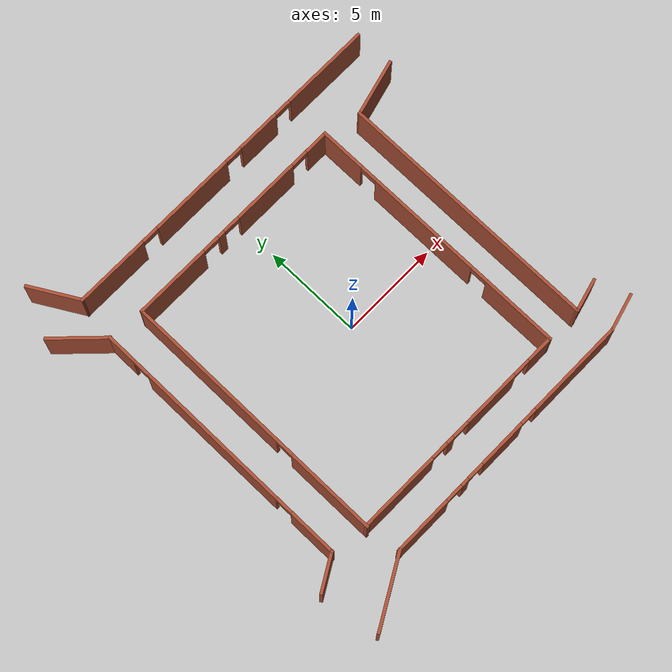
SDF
<?xml version='1.0'?>
<sdf version='1.6'>
  <model name='mcbryde'>
    <pose frame=''>-0.213241 0.373454 0 0 -0 0</pose>
    <link name='Wall_0'>
      <collision name='Wall_0_Collision'>
        <geometry>
          <box>
            <size>2.75 0.15 2.5</size>
          </box>
        </geometry>
        <pose frame=''>0 0 1.25 0 -0 0</pose>
      </collision>
      <visual name='Wall_0_Visual'>
        <pose frame=''>0 0 1.25 0 -0 0</pose>
        <geometry>
          <box>
            <size>2.75 0.15 2.5</size>
          </box>
        </geometry>
        <material>
          <script>
            <uri>file://media/materials/scripts/gazebo.material</uri>
            <name>Gazebo/Bricks</name>
          </script>
          <ambient>1 1 1 1</ambient>
        </material>
      </visual>
      <pose frame=''>-8.27781 9.77765 0 0 0 -1.0472</pose>
    </link>
    <link name='Wall_1'>
      <pose frame=''>1.17219 8.65181 0 0 -0 0</pose>
      <visual name='Wall_1_Visual_0'>
        <pose frame=''>-6.96373 0 1.25 0 -0 0</pose>
        <geometry>
          <box>
            <size>3.82254 0.15 2.5</size>
          </box>
        </geometry>
        <material>
          <script>
            <uri>file://media/materials/scripts/gazebo.material</uri>
            <name>Gazebo/Bricks</name>
          </script>
          <ambient>1 1 1 1</ambient>
        </material>
      </visual>
      <collision name='Wall_1_Collision_0'>
        <geometry>
          <box>
            <size>3.82254 0.15 2.5</size>
          </box>
        </geometry>
        <pose frame=''>-6.96373 0 1.25 0 -0 0</pose>
      </collision>
      <visual name='Wall_1_Visual_1'>
        <pose frame=''>-1.96406 0 1.25 0 -0 0</pose>
        <geometry>
          <box>
            <size>4.37681 0.15 2.5</size>
          </box>
        </geometry>
        <material>
          <script>
            <uri>file://media/materials/scripts/gazebo.material</uri>
            <name>Gazebo/Bricks</name>
          </script>
          <ambient>1 1 1 1</ambient>
        </material>
      </visual>
      <collision name='Wall_1_Collision_1'>
        <geometry>
          <box>
            <size>4.37681 0.15 2.5</size>
          </box>
        </geometry>
        <pose frame=''>-1.96406 0 1.25 0 -0 0</pose>
      </collision>
      <visual name='Wall_1_Visual_2'>
        <pose frame=''>2.25739 0 1.25 0 -0 0</pose>
        <geometry>
          <box>
            <size>2.26609 0.15 2.5</size>
          </box>
        </geometry>
        <material>
          <script>
            <uri>file://media/materials/scripts/gazebo.material</uri>
            <name>Gazebo/Bricks</name>
          </script>
          <ambient>1 1 1 1</ambient>
        </material>
      </visual>
      <collision name='Wall_1_Collision_2'>
        <geometry>
          <box>
            <size>2.26609 0.15 2.5</size>
          </box>
        </geometry>
        <pose frame=''>2.25739 0 1.25 0 -0 0</pose>
      </collision>
      <visual name='Wall_1_Visual_3'>
        <pose frame=''>6.58272 0 1.25 0 -0 0</pose>
        <geometry>
          <box>
            <size>4.58456 0.15 2.5</size>
          </box>
        </geometry>
        <material>
          <script>
            <uri>file://media/materials/scripts/gazebo.material</uri>
            <name>Gazebo/Bricks</name>
          </script>
          <ambient>1 1 1 1</ambient>
        </material>
      </visual>
      <collision name='Wall_1_Collision_3'>
        <geometry>
          <box>
            <size>4.58456 0.15 2.5</size>
          </box>
        </geometry>
        <pose frame=''>6.58272 0 1.25 0 -0 0</pose>
      </collision>
      <visual name='Wall_1_Visual_4'>
        <pose frame=''>-4.60246 0 2.25 0 -0 0</pose>
        <geometry>
          <box>
            <size>0.9 0.15 0.5</size>
          </box>
        </geometry>
        <material>
          <script>
            <uri>file://media/materials/scripts/gazebo.material</uri>
            <name>Gazebo/Bricks</name>
          </script>
          <ambient>1 1 1 1</ambient>
        </material>
      </visual>
      <collision name='Wall_1_Collision_4'>
        <geometry>
          <box>
            <size>0.9 0.15 0.5</size>
          </box>
        </geometry>
        <pose frame=''>-4.60246 0 2.25 0 -0 0</pose>
      </collision>
      <visual name='Wall_1_Visual_5'>
        <pose frame=''>0.674351 0 2.25 0 -0 0</pose>
        <geometry>
          <box>
            <size>0.9 0.15 0.5</size>
          </box>
        </geometry>
        <material>
          <script>
            <uri>file://media/materials/scripts/gazebo.material</uri>
            <name>Gazebo/Bricks</name>
          </script>
          <ambient>1 1 1 1</ambient>
        </material>
      </visual>
      <collision name='Wall_1_Collision_5'>
        <geometry>
          <box>
            <size>0.9 0.15 0.5</size>
          </box>
        </geometry>
        <pose frame=''>0.674351 0 2.25 0 -0 0</pose>
      </collision>
      <visual name='Wall_1_Visual_6'>
        <pose frame=''>3.84044 0 2.25 0 -0 0</pose>
        <geometry>
          <box>
            <size>0.9 0.15 0.5</size>
          </box>
        </geometry>
        <material>
          <script>
            <uri>file://media/materials/scripts/gazebo.material</uri>
            <name>Gazebo/Bricks</name>
          </script>
          <ambient>1 1 1 1</ambient>
        </material>
      </visual>
      <collision name='Wall_1_Collision_6'>
        <geometry>
          <box>
            <size>0.9 0.15 0.5</size>
          </box>
        </geometry>
        <pose frame=''>3.84044 0 2.25 0 -0 0</pose>
      </collision>
    </link>
    <link name='Wall_11'>
      <pose frame=''>5.46436 -0.506491 0 0 0 -1.5708</pose>
      <visual name='Wall_11_Visual_0'>
        <pose frame=''>-5.77958 0 1.25 0 -0 0</pose>
        <geometry>
          <box>
            <size>2.38734 0.15 2.5</size>
          </box>
        </geometry>
        <material>
          <script>
            <uri>file://media/materials/scripts/gazebo.material</uri>
            <name>Gazebo/Bricks</name>
          </script>
          <ambient>1 1 1 1</ambient>
        </material>
      </visual>
      <collision name='Wall_11_Collision_0'>
        <geometry>
          <box>
            <size>2.38734 0.15 2.5</size>
          </box>
        </geometry>
        <pose frame=''>-5.77958 0 1.25 0 -0 0</pose>
      </collision>
      <visual name='Wall_11_Visual_1'>
        <pose frame=''>-0.740396 0 1.25 0 -0 0</pose>
        <geometry>
          <box>
            <size>5.89103 0.15 2.5</size>
          </box>
        </geometry>
        <material>
          <script>
            <uri>file://media/materials/scripts/gazebo.material</uri>
            <name>Gazebo/Bricks</name>
          </script>
          <ambient>1 1 1 1</ambient>
        </material>
      </visual>
      <collision name='Wall_11_Collision_1'>
        <geometry>
          <box>
            <size>5.89103 0.15 2.5</size>
          </box>
        </geometry>
        <pose frame=''>-0.740396 0 1.25 0 -0 0</pose>
      </collision>
      <visual name='Wall_11_Visual_2'>
        <pose frame=''>5.03918 0 1.25 0 -0 0</pose>
        <geometry>
          <box>
            <size>3.86813 0.15 2.5</size>
          </box>
        </geometry>
        <material>
          <script>
            <uri>file://media/materials/scripts/gazebo.material</uri>
            <name>Gazebo/Bricks</name>
          </script>
          <ambient>1 1 1 1</ambient>
        </material>
      </visual>
      <collision name='Wall_11_Collision_2'>
        <geometry>
          <box>
            <size>3.86813 0.15 2.5</size>
          </box>
        </geometry>
        <pose frame=''>5.03918 0 1.25 0 -0 0</pose>
      </collision>
      <visual name='Wall_11_Visual_3'>
        <pose frame=''>-4.13591 0 2.25 0 -0 0</pose>
        <geometry>
          <box>
            <size>0.9 0.15 0.5</size>
          </box>
        </geometry>
        <material>
          <script>
            <uri>file://media/materials/scripts/gazebo.material</uri>
            <name>Gazebo/Bricks</name>
          </script>
          <ambient>1 1 1 1</ambient>
        </material>
      </visual>
      <collision name='Wall_11_Collision_3'>
        <geometry>
          <box>
            <size>0.9 0.15 0.5</size>
          </box>
        </geometry>
        <pose frame=''>-4.13591 0 2.25 0 -0 0</pose>
      </collision>
      <visual name='Wall_11_Visual_4'>
        <pose frame=''>2.65512 0 2.25 0 -0 0</pose>
        <geometry>
          <box>
            <size>0.9 0.15 0.5</size>
          </box>
        </geometry>
        <material>
          <script>
            <uri>file://media/materials/scripts/gazebo.material</uri>
            <name>Gazebo/Bricks</name>
          </script>
          <ambient>1 1 1 1</ambient>
        </material>
      </visual>
      <collision name='Wall_11_Collision_4'>
        <geometry>
          <box>
            <size>0.9 0.15 0.5</size>
          </box>
        </geometry>
        <pose frame=''>2.65512 0 2.25 0 -0 0</pose>
      </collision>
    </link>
    <link name='Wall_12'>
      <pose frame=''>-0.344396 -7.37799 0 0 -0 3.13699</pose>
      <visual name='Wall_12_Visual_0'>
        <pose frame=''>-5.15866 0 1.25 0 -0 0</pose>
        <geometry>
          <box>
            <size>1.45068 0.15 2.5</size>
          </box>
        </geometry>
        <material>
          <script>
            <uri>file://media/materials/scripts/gazebo.material</uri>
            <name>Gazebo/Bricks</name>
          </script>
          <ambient>1 1 1 1</ambient>
        </material>
      </visual>
      <collision name='Wall_12_Collision_0'>
        <geometry>
          <box>
            <size>1.45068 0.15 2.5</size>
          </box>
        </geometry>
        <pose frame=''>-5.15866 0 1.25 0 -0 0</pose>
      </collision>
      <visual name='Wall_12_Visual_1'>
        <pose frame=''>-2.04065 0 1.25 0 -0 0</pose>
        <geometry>
          <box>
            <size>2.98534 0.15 2.5</size>
          </box>
        </geometry>
        <material>
          <script>
            <uri>file://media/materials/scripts/gazebo.material</uri>
            <name>Gazebo/Bricks</name>
          </script>
          <ambient>1 1 1 1</ambient>
        </material>
      </visual>
      <collision name='Wall_12_Collision_1'>
        <geometry>
          <box>
            <size>2.98534 0.15 2.5</size>
          </box>
        </geometry>
        <pose frame=''>-2.04065 0 1.25 0 -0 0</pose>
      </collision>
      <visual name='Wall_12_Visual_2'>
        <pose frame=''>0.55949 0 1.25 0 -0 0</pose>
        <geometry>
          <box>
            <size>0.414943 0.15 2.5</size>
          </box>
        </geometry>
        <material>
          <script>
            <uri>file://media/materials/scripts/gazebo.material</uri>
            <name>Gazebo/Bricks</name>
          </script>
          <ambient>1 1 1 1</ambient>
        </material>
      </visual>
      <collision name='Wall_12_Collision_2'>
        <geometry>
          <box>
            <size>0.414943 0.15 2.5</size>
          </box>
        </geometry>
        <pose frame=''>0.55949 0 1.25 0 -0 0</pose>
      </collision>
      <visual name='Wall_12_Visual_3'>
        <pose frame=''>3.77548 0 1.25 0 -0 0</pose>
        <geometry>
          <box>
            <size>4.21704 0.15 2.5</size>
          </box>
        </geometry>
        <material>
          <script>
            <uri>file://media/materials/scripts/gazebo.material</uri>
            <name>Gazebo/Bricks</name>
          </script>
          <ambient>1 1 1 1</ambient>
        </material>
      </visual>
      <collision name='Wall_12_Collision_3'>
        <geometry>
          <box>
            <size>4.21704 0.15 2.5</size>
          </box>
        </geometry>
        <pose frame=''>3.77548 0 1.25 0 -0 0</pose>
      </collision>
      <visual name='Wall_12_Visual_4'>
        <pose frame=''>-3.98332 0 2.25 0 -0 0</pose>
        <geometry>
          <box>
            <size>0.9 0.15 0.5</size>
          </box>
        </geometry>
        <material>
          <script>
            <uri>file://media/materials/scripts/gazebo.material</uri>
            <name>Gazebo/Bricks</name>
          </script>
          <ambient>1 1 1 1</ambient>
        </material>
      </visual>
      <collision name='Wall_12_Collision_4'>
        <geometry>
          <box>
            <size>0.9 0.15 0.5</size>
          </box>
        </geometry>
        <pose frame=''>-3.98332 0 2.25 0 -0 0</pose>
      </collision>
      <visual name='Wall_12_Visual_5'>
        <pose frame=''>-0.097982 0 2.25 0 -0 0</pose>
        <geometry>
          <box>
            <size>0.9 0.15 0.5</size>
          </box>
        </geometry>
        <material>
          <script>
            <uri>file://media/materials/scripts/gazebo.material</uri>
            <name>Gazebo/Bricks</name>
          </script>
          <ambient>1 1 1 1</ambient>
        </material>
      </visual>
      <collision name='Wall_12_Collision_5'>
        <geometry>
          <box>
            <size>0.9 0.15 0.5</size>
          </box>
        </geometry>
        <pose frame=''>-0.097982 0 2.25 0 -0 0</pose>
      </collision>
      <visual name='Wall_12_Visual_6'>
        <pose frame=''>1.21696 0 2.25 0 -0 0</pose>
        <geometry>
          <box>
            <size>0.9 0.15 0.5</size>
          </box>
        </geometry>
        <material>
          <script>
            <uri>file://media/materials/scripts/gazebo.material</uri>
            <name>Gazebo/Bricks</name>
          </script>
          <ambient>1 1 1 1</ambient>
        </material>
      </visual>
      <collision name='Wall_12_Collision_6'>
        <geometry>
          <box>
            <size>0.9 0.15 0.5</size>
          </box>
        </geometry>
        <pose frame=''>1.21696 0 2.25 0 -0 0</pose>
      </collision>
    </link>
    <link name='Wall_13'>
      <pose frame=''>-6.15315 -0.533242 0 0 -0 1.5708</pose>
      <visual name='Wall_13_Visual_0'>
        <pose frame=''>-4.66064 0 1.25 0 -0 0</pose>
        <geometry>
          <box>
            <size>4.5717 0.15 2.5</size>
          </box>
        </geometry>
        <material>
          <script>
            <uri>file://media/materials/scripts/gazebo.material</uri>
            <name>Gazebo/Bricks</name>
          </script>
          <ambient>1 1 1 1</ambient>
        </material>
      </visual>
      <collision name='Wall_13_Collision_0'>
        <geometry>
          <box>
            <size>4.5717 0.15 2.5</size>
          </box>
        </geometry>
        <pose frame=''>-4.66064 0 1.25 0 -0 0</pose>
      </collision>
      <visual name='Wall_13_Visual_1'>
        <pose frame=''>2.73585 0 1.25 0 -0 0</pose>
        <geometry>
          <box>
            <size>8.42129 0.15 2.5</size>
          </box>
        </geometry>
        <material>
          <script>
            <uri>file://media/materials/scripts/gazebo.material</uri>
            <name>Gazebo/Bricks</name>
          </script>
          <ambient>1 1 1 1</ambient>
        </material>
      </visual>
      <collision name='Wall_13_Collision_1'>
        <geometry>
          <box>
            <size>8.42129 0.15 2.5</size>
          </box>
        </geometry>
        <pose frame=''>2.73585 0 1.25 0 -0 0</pose>
      </collision>
      <visual name='Wall_13_Visual_2'>
        <pose frame=''>-1.92479 0 2.25 0 -0 0</pose>
        <geometry>
          <box>
            <size>0.9 0.15 0.5</size>
          </box>
        </geometry>
        <material>
          <script>
            <uri>file://media/materials/scripts/gazebo.material</uri>
            <name>Gazebo/Bricks</name>
          </script>
          <ambient>1 1 1 1</ambient>
        </material>
      </visual>
      <collision name='Wall_13_Collision_2'>
        <geometry>
          <box>
            <size>0.9 0.15 0.5</size>
          </box>
        </geometry>
        <pose frame=''>-1.92479 0 2.25 0 -0 0</pose>
      </collision>
    </link>
    <link name='Wall_14'>
      <pose frame=''>-0.344396 6.39176 0 0 -0 0</pose>
      <visual name='Wall_14_Visual_0'>
        <pose frame=''>-3.91303 0 1.25 0 -0 0</pose>
        <geometry>
          <box>
            <size>3.94145 0.15 2.5</size>
          </box>
        </geometry>
        <material>
          <script>
            <uri>file://media/materials/scripts/gazebo.material</uri>
            <name>Gazebo/Bricks</name>
          </script>
          <ambient>1 1 1 1</ambient>
        </material>
      </visual>
      <collision name='Wall_14_Collision_0'>
        <geometry>
          <box>
            <size>3.94145 0.15 2.5</size>
          </box>
        </geometry>
        <pose frame=''>-3.91303 0 1.25 0 -0 0</pose>
      </collision>
      <visual name='Wall_14_Visual_1'>
        <pose frame=''>-0.849915 0 1.25 0 -0 0</pose>
        <geometry>
          <box>
            <size>0.38479 0.15 2.5</size>
          </box>
        </geometry>
        <material>
          <script>
            <uri>file://media/materials/scripts/gazebo.material</uri>
            <name>Gazebo/Bricks</name>
          </script>
          <ambient>1 1 1 1</ambient>
        </material>
      </visual>
      <collision name='Wall_14_Collision_1'>
        <geometry>
          <box>
            <size>0.38479 0.15 2.5</size>
          </box>
        </geometry>
        <pose frame=''>-0.849915 0 1.25 0 -0 0</pose>
      </collision>
      <visual name='Wall_14_Visual_2'>
        <pose frame=''>1.96439 0 1.25 0 -0 0</pose>
        <geometry>
          <box>
            <size>3.44381 0.15 2.5</size>
          </box>
        </geometry>
        <material>
          <script>
            <uri>file://media/materials/scripts/gazebo.material</uri>
            <name>Gazebo/Bricks</name>
          </script>
          <ambient>1 1 1 1</ambient>
        </material>
      </visual>
      <collision name='Wall_14_Collision_2'>
        <geometry>
          <box>
            <size>3.44381 0.15 2.5</size>
          </box>
        </geometry>
        <pose frame=''>1.96439 0 1.25 0 -0 0</pose>
      </collision>
      <visual name='Wall_14_Visual_3'>
        <pose frame=''>5.23502 0 1.25 0 -0 0</pose>
        <geometry>
          <box>
            <size>1.29746 0.15 2.5</size>
          </box>
        </geometry>
        <material>
          <script>
            <uri>file://media/materials/scripts/gazebo.material</uri>
            <name>Gazebo/Bricks</name>
          </script>
          <ambient>1 1 1 1</ambient>
        </material>
      </visual>
      <collision name='Wall_14_Collision_3'>
        <geometry>
          <box>
            <size>1.29746 0.15 2.5</size>
          </box>
        </geometry>
        <pose frame=''>5.23502 0 1.25 0 -0 0</pose>
      </collision>
      <visual name='Wall_14_Visual_4'>
        <pose frame=''>-1.49231 0 2.25 0 -0 0</pose>
        <geometry>
          <box>
            <size>0.9 0.15 0.5</size>
          </box>
        </geometry>
        <material>
          <script>
            <uri>file://media/materials/scripts/gazebo.material</uri>
            <name>Gazebo/Bricks</name>
          </script>
          <ambient>1 1 1 1</ambient>
        </material>
      </visual>
      <collision name='Wall_14_Collision_4'>
        <geometry>
          <box>
            <size>0.9 0.15 0.5</size>
          </box>
        </geometry>
        <pose frame=''>-1.49231 0 2.25 0 -0 0</pose>
      </collision>
      <visual name='Wall_14_Visual_5'>
        <pose frame=''>-0.20752 0 2.25 0 -0 0</pose>
        <geometry>
          <box>
            <size>0.9 0.15 0.5</size>
          </box>
        </geometry>
        <material>
          <script>
            <uri>file://media/materials/scripts/gazebo.material</uri>
            <name>Gazebo/Bricks</name>
          </script>
          <ambient>1 1 1 1</ambient>
        </material>
      </visual>
      <collision name='Wall_14_Collision_5'>
        <geometry>
          <box>
            <size>0.9 0.15 0.5</size>
          </box>
        </geometry>
        <pose frame=''>-0.20752 0 2.25 0 -0 0</pose>
      </collision>
      <visual name='Wall_14_Visual_6'>
        <pose frame=''>4.13629 0 2.25 0 -0 0</pose>
        <geometry>
          <box>
            <size>0.9 0.15 0.5</size>
          </box>
        </geometry>
        <material>
          <script>
            <uri>file://media/materials/scripts/gazebo.material</uri>
            <name>Gazebo/Bricks</name>
          </script>
          <ambient>1 1 1 1</ambient>
        </material>
      </visual>
      <collision name='Wall_14_Collision_6'>
        <geometry>
          <box>
            <size>0.9 0.15 0.5</size>
          </box>
        </geometry>
        <pose frame=''>4.13629 0 2.25 0 -0 0</pose>
      </collision>
    </link>
    <link name='Wall_17'>
      <collision name='Wall_17_Collision'>
        <geometry>
          <box>
            <size>3 0.15 2.5</size>
          </box>
        </geometry>
        <pose frame=''>0 0 1.25 0 -0 0</pose>
      </collision>
      <visual name='Wall_17_Visual'>
        <pose frame=''>0 0 1.25 0 -0 0</pose>
        <geometry>
          <box>
            <size>3 0.15 2.5</size>
          </box>
        </geometry>
        <material>
          <script>
            <uri>file://media/materials/scripts/gazebo.material</uri>
            <name>Gazebo/Bricks</name>
          </script>
          <ambient>1 1 1 1</ambient>
        </material>
      </visual>
      <pose frame=''>-8.99024 7.54174 0 0 0 -0.785398</pose>
    </link>
    <link name='Wall_18'>
      <pose frame=''>-7.98261 -0.265884 0 0 0 -1.5708</pose>
      <visual name='Wall_18_Visual_0'>
        <pose frame=''>-6.06758 0 1.25 0 -0 0</pose>
        <geometry>
          <box>
            <size>1.61484 0.15 2.5</size>
          </box>
        </geometry>
        <material>
          <script>
            <uri>file://media/materials/scripts/gazebo.material</uri>
            <name>Gazebo/Bricks</name>
          </script>
          <ambient>1 1 1 1</ambient>
        </material>
      </visual>
      <collision name='Wall_18_Collision_0'>
        <geometry>
          <box>
            <size>1.61484 0.15 2.5</size>
          </box>
        </geometry>
        <pose frame=''>-6.06758 0 1.25 0 -0 0</pose>
      </collision>
      <visual name='Wall_18_Visual_1'>
        <pose frame=''>-0.430409 0 1.25 0 -0 0</pose>
        <geometry>
          <box>
            <size>7.85951 0.15 2.5</size>
          </box>
        </geometry>
        <material>
          <script>
            <uri>file://media/materials/scripts/gazebo.material</uri>
            <name>Gazebo/Bricks</name>
          </script>
          <ambient>1 1 1 1</ambient>
        </material>
      </visual>
      <collision name='Wall_18_Collision_1'>
        <geometry>
          <box>
            <size>7.85951 0.15 2.5</size>
          </box>
        </geometry>
        <pose frame=''>-0.430409 0 1.25 0 -0 0</pose>
      </collision>
      <visual name='Wall_18_Visual_2'>
        <pose frame=''>5.63717 0 1.25 0 -0 0</pose>
        <geometry>
          <box>
            <size>2.47565 0.15 2.5</size>
          </box>
        </geometry>
        <material>
          <script>
            <uri>file://media/materials/scripts/gazebo.material</uri>
            <name>Gazebo/Bricks</name>
          </script>
          <ambient>1 1 1 1</ambient>
        </material>
      </visual>
      <collision name='Wall_18_Collision_2'>
        <geometry>
          <box>
            <size>2.47565 0.15 2.5</size>
          </box>
        </geometry>
        <pose frame=''>5.63717 0 1.25 0 -0 0</pose>
      </collision>
      <visual name='Wall_18_Visual_3'>
        <pose frame=''>-4.81016 0 2.25 0 -0 0</pose>
        <geometry>
          <box>
            <size>0.9 0.15 0.5</size>
          </box>
        </geometry>
        <material>
          <script>
            <uri>file://media/materials/scripts/gazebo.material</uri>
            <name>Gazebo/Bricks</name>
          </script>
          <ambient>1 1 1 1</ambient>
        </material>
      </visual>
      <collision name='Wall_18_Collision_3'>
        <geometry>
          <box>
            <size>0.9 0.15 0.5</size>
          </box>
        </geometry>
        <pose frame=''>-4.81016 0 2.25 0 -0 0</pose>
      </collision>
      <visual name='Wall_18_Visual_4'>
        <pose frame=''>3.94935 0 2.25 0 -0 0</pose>
        <geometry>
          <box>
            <size>0.9 0.15 0.5</size>
          </box>
        </geometry>
        <material>
          <script>
            <uri>file://media/materials/scripts/gazebo.material</uri>
            <name>Gazebo/Bricks</name>
          </script>
          <ambient>1 1 1 1</ambient>
        </material>
      </visual>
      <collision name='Wall_18_Collision_4'>
        <geometry>
          <box>
            <size>0.9 0.15 0.5</size>
          </box>
        </geometry>
        <pose frame=''>3.94935 0 2.25 0 -0 0</pose>
      </collision>
    </link>
    <link name='Wall_19'>
      <collision name='Wall_19_Collision'>
        <geometry>
          <box>
            <size>2 0.15 2.5</size>
          </box>
        </geometry>
        <pose frame=''>0 0 1.25 0 -0 0</pose>
      </collision>
      <visual name='Wall_19_Visual'>
        <pose frame=''>0 0 1.25 0 -0 0</pose>
        <geometry>
          <box>
            <size>2 0.15 2.5</size>
          </box>
        </geometry>
        <material>
          <script>
            <uri>file://media/materials/scripts/gazebo.material</uri>
            <name>Gazebo/Bricks</name>
          </script>
          <ambient>1 1 1 1</ambient>
        </material>
      </visual>
      <pose frame=''>-8.78368 -7.52838 0 0 0 -2.61799</pose>
    </link>
    <link name='Wall_3'>
      <collision name='Wall_3_Collision'>
        <geometry>
          <box>
            <size>3 0.15 2.5</size>
          </box>
        </geometry>
        <pose frame=''>0 0 1.25 0 -0 0</pose>
      </collision>
      <visual name='Wall_3_Visual'>
        <pose frame=''>0 0 1.25 0 -0 0</pose>
        <geometry>
          <box>
            <size>3 0.15 2.5</size>
          </box>
        </geometry>
        <material>
          <script>
            <uri>file://media/materials/scripts/gazebo.material</uri>
            <name>Gazebo/Bricks</name>
          </script>
          <ambient>1 1 1 1</ambient>
        </material>
      </visual>
      <pose frame=''>8.63563 6.30797 0 0 0 -2.87979</pose>
    </link>
    <link name='Wall_4'>
      <collision name='Wall_4_Collision'>
        <geometry>
          <box>
            <size>13.5 0.15 2.5</size>
          </box>
        </geometry>
        <pose frame=''>0 0 1.25 0 -0 0</pose>
      </collision>
      <visual name='Wall_4_Visual'>
        <pose frame=''>0 0 1.25 0 -0 0</pose>
        <geometry>
          <box>
            <size>13.5 0.15 2.5</size>
          </box>
        </geometry>
        <material>
          <script>
            <uri>file://media/materials/scripts/gazebo.material</uri>
            <name>Gazebo/Bricks</name>
          </script>
          <ambient>1 1 1 1</ambient>
        </material>
      </visual>
      <pose frame=''>7.25918 -0.735852 0 0 0 -1.5708</pose>
    </link>
    <link name='Wall_5'>
      <collision name='Wall_5_Collision'>
        <geometry>
          <box>
            <size>1.75 0.15 2.5</size>
          </box>
        </geometry>
        <pose frame=''>0 0 1.25 0 -0 0</pose>
      </collision>
      <visual name='Wall_5_Visual'>
        <pose frame=''>0 0 1.25 0 -0 0</pose>
        <geometry>
          <box>
            <size>1.75 0.15 2.5</size>
          </box>
        </geometry>
        <material>
          <script>
            <uri>file://media/materials/scripts/gazebo.material</uri>
            <name>Gazebo/Bricks</name>
          </script>
          <ambient>1 1 1 1</ambient>
        </material>
      </visual>
      <pose frame=''>8.03192 -7.2038 0 0 -0 0.261799</pose>
    </link>
    <link name='Wall_7'>
      <collision name='Wall_7_Collision'>
        <geometry>
          <box>
            <size>1.93213 0.15 2.5</size>
          </box>
        </geometry>
        <pose frame=''>0 0 1.25 0 -0 0</pose>
      </collision>
      <visual name='Wall_7_Visual'>
        <pose frame=''>0 0 1.25 0 -0 0</pose>
        <geometry>
          <box>
            <size>1.93213 0.15 2.5</size>
          </box>
        </geometry>
        <material>
          <script>
            <uri>file://media/materials/scripts/gazebo.material</uri>
            <name>Gazebo/Bricks</name>
          </script>
          <ambient>1 1 1 1</ambient>
        </material>
      </visual>
      <pose frame=''>8.56524 -8.86434 0 0 0 -2.86958</pose>
    </link>
    <link name='Wall_8'>
      <pose frame=''>0.871761 -9.10375 0 0 -0 3.14159</pose>
      <visual name='Wall_8_Visual_0'>
        <pose frame=''>-4.34337 0 1.25 0 -0 0</pose>
        <geometry>
          <box>
            <size>5.06326 0.15 2.5</size>
          </box>
        </geometry>
        <material>
          <script>
            <uri>file://media/materials/scripts/gazebo.material</uri>
            <name>Gazebo/Bricks</name>
          </script>
          <ambient>1 1 1 1</ambient>
        </material>
      </visual>
      <collision name='Wall_8_Collision_0'>
        <geometry>
          <box>
            <size>5.06326 0.15 2.5</size>
          </box>
        </geometry>
        <pose frame=''>-4.34337 0 1.25 0 -0 0</pose>
      </collision>
      <visual name='Wall_8_Visual_1'>
        <pose frame=''>0.326837 0 1.25 0 -0 0</pose>
        <geometry>
          <box>
            <size>2.47716 0.15 2.5</size>
          </box>
        </geometry>
        <material>
          <script>
            <uri>file://media/materials/scripts/gazebo.material</uri>
            <name>Gazebo/Bricks</name>
          </script>
          <ambient>1 1 1 1</ambient>
        </material>
      </visual>
      <collision name='Wall_8_Collision_1'>
        <geometry>
          <box>
            <size>2.47716 0.15 2.5</size>
          </box>
        </geometry>
        <pose frame=''>0.326837 0 1.25 0 -0 0</pose>
      </collision>
      <visual name='Wall_8_Visual_2'>
        <pose frame=''>2.68381 0 1.25 0 -0 0</pose>
        <geometry>
          <box>
            <size>0.436793 0.15 2.5</size>
          </box>
        </geometry>
        <material>
          <script>
            <uri>file://media/materials/scripts/gazebo.material</uri>
            <name>Gazebo/Bricks</name>
          </script>
          <ambient>1 1 1 1</ambient>
        </material>
      </visual>
      <collision name='Wall_8_Collision_2'>
        <geometry>
          <box>
            <size>0.436793 0.15 2.5</size>
          </box>
        </geometry>
        <pose frame=''>2.68381 0 1.25 0 -0 0</pose>
      </collision>
      <visual name='Wall_8_Visual_3'>
        <pose frame=''>5.33861 0 1.25 0 -0 0</pose>
        <geometry>
          <box>
            <size>3.07279 0.15 2.5</size>
          </box>
        </geometry>
        <material>
          <script>
            <uri>file://media/materials/scripts/gazebo.material</uri>
            <name>Gazebo/Bricks</name>
          </script>
          <ambient>1 1 1 1</ambient>
        </material>
      </visual>
      <collision name='Wall_8_Collision_3'>
        <geometry>
          <box>
            <size>3.07279 0.15 2.5</size>
          </box>
        </geometry>
        <pose frame=''>5.33861 0 1.25 0 -0 0</pose>
      </collision>
      <visual name='Wall_8_Visual_4'>
        <pose frame=''>-1.36174 0 2.25 0 -0 0</pose>
        <geometry>
          <box>
            <size>0.9 0.15 0.5</size>
          </box>
        </geometry>
        <material>
          <script>
            <uri>file://media/materials/scripts/gazebo.material</uri>
            <name>Gazebo/Bricks</name>
          </script>
          <ambient>1 1 1 1</ambient>
        </material>
      </visual>
      <collision name='Wall_8_Collision_4'>
        <geometry>
          <box>
            <size>0.9 0.15 0.5</size>
          </box>
        </geometry>
        <pose frame=''>-1.36174 0 2.25 0 -0 0</pose>
      </collision>
      <visual name='Wall_8_Visual_5'>
        <pose frame=''>2.01542 0 2.25 0 -0 0</pose>
        <geometry>
          <box>
            <size>0.9 0.15 0.5</size>
          </box>
        </geometry>
        <material>
          <script>
            <uri>file://media/materials/scripts/gazebo.material</uri>
            <name>Gazebo/Bricks</name>
          </script>
          <ambient>1 1 1 1</ambient>
        </material>
      </visual>
      <collision name='Wall_8_Collision_5'>
        <geometry>
          <box>
            <size>0.9 0.15 0.5</size>
          </box>
        </geometry>
        <pose frame=''>2.01542 0 2.25 0 -0 0</pose>
      </collision>
      <visual name='Wall_8_Visual_6'>
        <pose frame=''>3.35221 0 2.25 0 -0 0</pose>
        <geometry>
          <box>
            <size>0.9 0.15 0.5</size>
          </box>
        </geometry>
        <material>
          <script>
            <uri>file://media/materials/scripts/gazebo.material</uri>
            <name>Gazebo/Bricks</name>
          </script>
          <ambient>1 1 1 1</ambient>
        </material>
      </visual>
      <collision name='Wall_8_Collision_6'>
        <geometry>
          <box>
            <size>0.9 0.15 0.5</size>
          </box>
        </geometry>
        <pose frame=''>3.35221 0 2.25 0 -0 0</pose>
      </collision>
    </link>
    <link name='Wall_9'>
      <collision name='Wall_9_Collision'>
        <geometry>
          <box>
            <size>3.8111 0.15 2.5</size>
          </box>
        </geometry>
        <pose frame=''>0 0 1.25 0 -0 0</pose>
      </collision>
      <visual name='Wall_9_Visual'>
        <pose frame=''>0 0 1.25 0 -0 0</pose>
        <geometry>
          <box>
            <size>3.8111 0.15 2.5</size>
          </box>
        </geometry>
        <material>
          <script>
            <uri>file://media/materials/scripts/gazebo.material</uri>
            <name>Gazebo/Bricks</name>
          </script>
          <ambient>1 1 1 1</ambient>
        </material>
      </visual>
      <pose frame=''>-7.48709 -10.0037 0 0 0 -2.6276</pose>
    </link>
    <static>1</static>
  </model>
</sdf>
